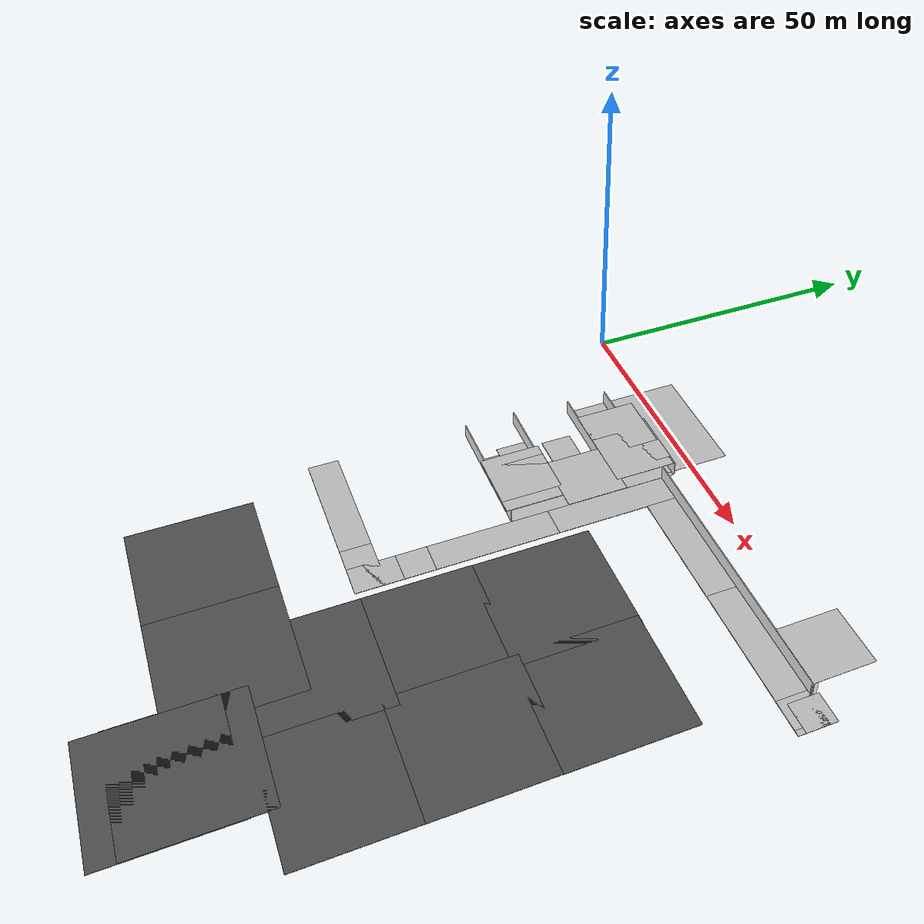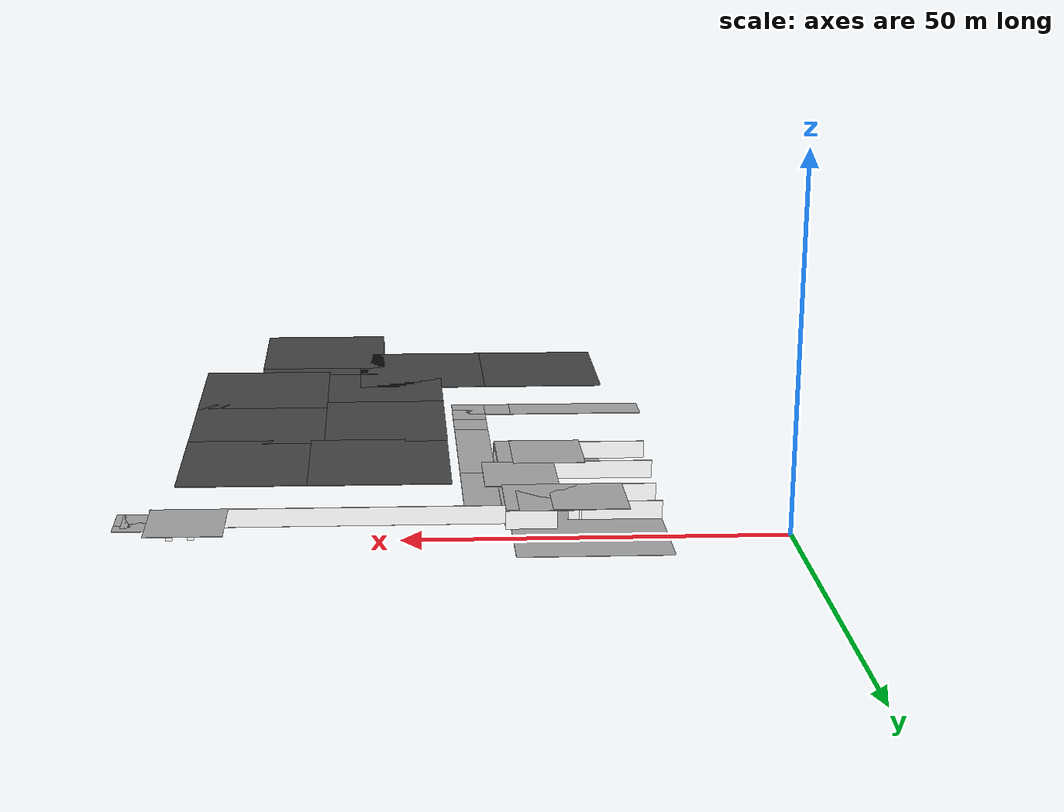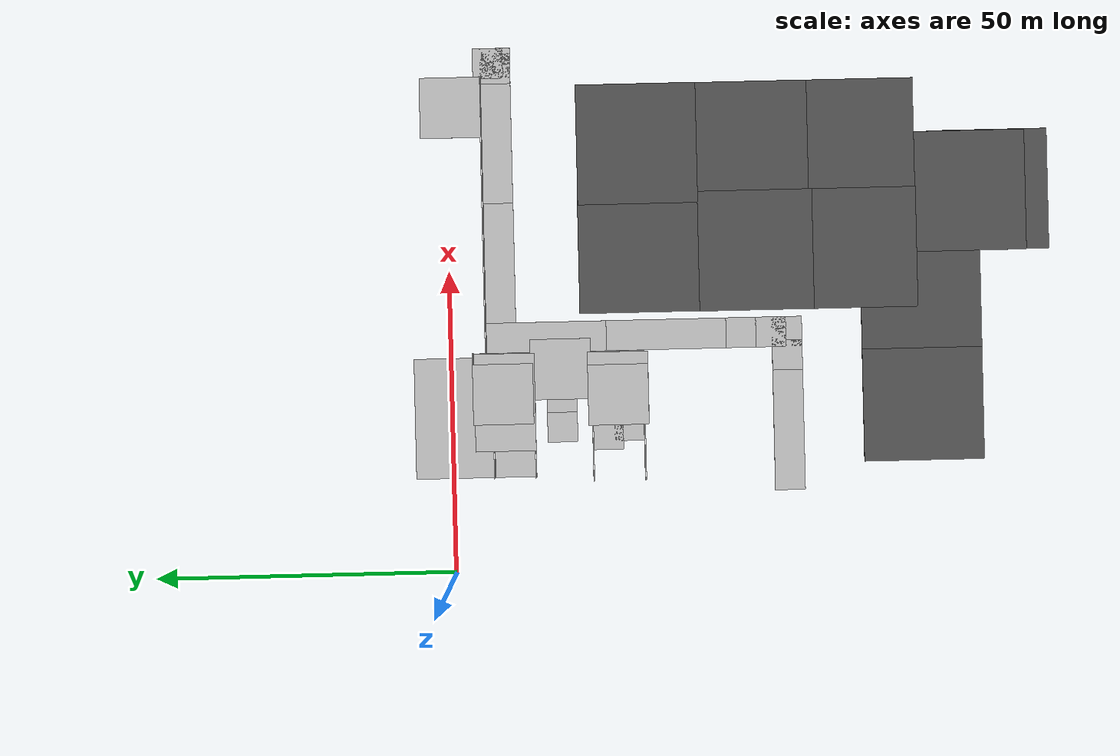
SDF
<sdf version="1.6">
 <world name="default">
  <model name="mainoffice">
   <pose>42.7555 15.4488 0 0 -0 0</pose>
   <link name="Wall_28">
    <collision name="Wall_28_Collision">
     <geometry><box><size>45.75 0.15 2.5</size></box></geometry>
     <pose>0 0 1.25 0 -0 0</pose>
    </collision>
    <visual name="Wall_28_Visual">
     <pose>0 0 1.25 0 -0 0</pose>
     <geometry><box><size>45.75 0.15 2.5</size></box></geometry>
     <material>
      <script>
       <uri>model://office_env/materials/scripts</uri>
       <uri>model://office_env/materials/textures</uri>
       <name>wall</name>
      </script>
      <ambient>1 1 1 1</ambient>
     </material>
    </visual>
    <pose>16.3009 -21.225 0 0 -0 3.14159</pose>
   </link>
   <link name="Wall_29">
    <collision name="Wall_29_Collision">
     <geometry><box><size>26.25 0.15 2.5</size></box></geometry>
     <pose>0 0 1.25 0 -0 0</pose>
    </collision>
    <visual name="Wall_29_Visual">
     <pose>0 0 1.25 0 -0 0</pose>
     <geometry><box><size>26.25 0.15 2.5</size></box></geometry>
     <material>
      <script>
       <uri>model://office_env/materials/scripts</uri>
       <uri>model://office_env/materials/textures</uri>
       <name>wall</name>
      </script>
      <ambient>1 1 1 1</ambient>
     </material>
    </visual>
    <pose>-6.49909 -34.275 0 0 0 -1.5708</pose>
   </link>
   <link name="Wall_30">
    <collision name="Wall_30_Collision">
     <geometry><box><size>21.5 0.15 2.5</size></box></geometry>
     <pose>0 0 1.25 0 -0 0</pose>
    </collision>
    <visual name="Wall_30_Visual">
     <pose>0 0 1.25 0 -0 0</pose>
     <geometry><box><size>21.5 0.15 2.5</size></box></geometry>
     <material>
      <script>
       <uri>model://office_env/materials/scripts</uri>
       <uri>model://office_env/materials/textures</uri>
       <name>wall</name>
      </script>
      <ambient>1 1 1 1</ambient>
     </material>
    </visual>
    <pose>-17.1741 -47.325 0 0 -0 3.14159</pose>
   </link>
   <link name="Wall_32">
    <collision name="Wall_32_Collision">
     <geometry><box><size>16.5 0.15 2.5</size></box></geometry>
     <pose>0 0 1.25 0 -0 0</pose>
    </collision>
    <visual name="Wall_32_Visual">
     <pose>0 0 1.25 0 -0 0</pose>
     <geometry><box><size>16.5 0.15 2.5</size></box></geometry>
     <material>
      <script>
       <uri>model://office_env/materials/scripts</uri>
       <uri>model://office_env/materials/textures</uri>
       <name>wall</name>
      </script>
      <ambient>1 1 1 1</ambient>
     </material>
    </visual>
    <pose>-19.6741 -38.725 0 0 -0 0</pose>
   </link>
   <link name="Wall_33">
    <pose>-11.4991 -33.925 0 0 -0 1.5708</pose>
    <visual name="Wall_33_Visual_0">
     <pose>-2.68364 0 1.25 0 -0 0</pose>
     <geometry><box><size>4.38272 0.15 2.5</size></box></geometry>
     <material>
      <script>
       <uri>model://office_env/materials/scripts</uri>
       <uri>model://office_env/materials/textures</uri>
       <name>wall</name>
      </script>
      <ambient>1 1 1 1</ambient>
     </material>
    </visual>
    <collision name="Wall_33_Collision_0">
     <geometry><box><size>4.38272 0.15 2.5</size></box></geometry>
     <pose>-2.68364 0 1.25 0 -0 0</pose>
    </collision>
    <visual name="Wall_33_Visual_1">
     <pose>2.94136 0 1.25 0 -0 0</pose>
     <geometry><box><size>3.86728 0.15 2.5</size></box></geometry>
     <material>
      <script>
       <uri>model://office_env/materials/scripts</uri>
       <uri>model://office_env/materials/textures</uri>
       <name>wall</name>
      </script>
      <ambient>1 1 1 1</ambient>
     </material>
    </visual>
    <collision name="Wall_33_Collision_1">
     <geometry><box><size>3.86728 0.15 2.5</size></box></geometry>
     <pose>2.94136 0 1.25 0 -0 0</pose>
    </collision>
    <visual name="Wall_33_Visual_2">
     <pose>0.257717 0 2.25 0 -0 0</pose>
     <geometry><box><size>1.5 0.15 0.5</size></box></geometry>
     <material>
      <script>
       <uri>model://office_env/materials/scripts</uri>
       <uri>model://office_env/materials/textures</uri>
       <name>wall</name>
      </script>
      <ambient>1 1 1 1</ambient>
     </material>
    </visual>
    <collision name="Wall_33_Collision_2">
     <geometry><box><size>1.5 0.15 0.5</size></box></geometry>
     <pose>0.257717 0 2.25 0 -0 0</pose>
    </collision>
   </link>
   <link name="Wall_34">
    <collision name="Wall_34_Collision">
     <geometry><box><size>15.75 0.15 2.5</size></box></geometry>
     <pose>0 0 1.25 0 -0 0</pose>
    </collision>
    <visual name="Wall_34_Visual">
     <pose>0 0 1.25 0 -0 0</pose>
     <geometry><box><size>15.75 0.15 2.5</size></box></geometry>
     <material>
      <script>
       <uri>model://office_env/materials/scripts</uri>
       <uri>model://office_env/materials/textures</uri>
       <name>wall</name>
      </script>
      <ambient>1 1 1 1</ambient>
     </material>
    </visual>
    <pose>-19.2991 -29.125 0 0 -0 3.14159</pose>
   </link>
   <link name="Wall_46">
    <collision name="Wall_46_Collision">
     <geometry><box><size>0.5 0.15 2.5</size></box></geometry>
     <pose>0 0 1.25 0 -0 0</pose>
    </collision>
    <visual name="Wall_46_Visual">
     <pose>0 0 1.25 0 -0 0</pose>
     <geometry><box><size>0.5 0.15 2.5</size></box></geometry>
     <material>
      <script>
       <uri>model://office_env/materials/scripts</uri>
       <uri>model://office_env/materials/textures</uri>
       <name>wall</name>
      </script>
      <ambient>1 1 1 1</ambient>
     </material>
    </visual>
    <pose>39.2759 -21.225 0 0 -0 0</pose>
   </link>
   <link name="Wall_48">
    <collision name="Wall_48_Collision">
     <geometry><box><size>1 0.15 2.5</size></box></geometry>
     <pose>0 0 1.25 0 -0 0</pose>
    </collision>
    <visual name="Wall_48_Visual">
     <pose>0 0 1.25 0 -0 0</pose>
     <geometry><box><size>1 0.15 2.5</size></box></geometry>
     <material>
      <script>
       <uri>model://office_env/materials/scripts</uri>
       <uri>model://office_env/materials/textures</uri>
       <name>wall</name>
      </script>
      <ambient>1 1 1 1</ambient>
     </material>
    </visual>
    <pose>39.3509 -20.95 0 0 0 -1.5708</pose>
   </link>
   <link name="Wall_53">
    <pose>-9.07409 -38.725 0 0 -0 0</pose>
    <visual name="Wall_53_Visual_0">
     <pose>-1.62716 0 1.25 0 -0 0</pose>
     <geometry><box><size>1.74568 0.15 2.5</size></box></geometry>
     <material>
      <script>
       <uri>model://office_env/materials/scripts</uri>
       <uri>model://office_env/materials/textures</uri>
       <name>wall</name>
      </script>
      <ambient>1 1 1 1</ambient>
     </material>
    </visual>
    <collision name="Wall_53_Collision_0">
     <geometry><box><size>1.74568 0.15 2.5</size></box></geometry>
     <pose>-1.62716 0 1.25 0 -0 0</pose>
    </collision>
    <visual name="Wall_53_Visual_1">
     <pose>1.62284 0 1.25 0 -0 0</pose>
     <geometry><box><size>1.75432 0.15 2.5</size></box></geometry>
     <material>
      <script>
       <uri>model://office_env/materials/scripts</uri>
       <uri>model://office_env/materials/textures</uri>
       <name>wall</name>
      </script>
      <ambient>1 1 1 1</ambient>
     </material>
    </visual>
    <collision name="Wall_53_Collision_1">
     <geometry><box><size>1.75432 0.15 2.5</size></box></geometry>
     <pose>1.62284 0 1.25 0 -0 0</pose>
    </collision>
    <visual name="Wall_53_Visual_2">
     <pose>-0.00432 0 2.25 0 -0 0</pose>
     <geometry><box><size>1.5 0.15 0.5</size></box></geometry>
     <material>
      <script>
       <uri>model://office_env/materials/scripts</uri>
       <uri>model://office_env/materials/textures</uri>
       <name>wall</name>
      </script>
      <ambient>1 1 1 1</ambient>
     </material>
    </visual>
    <collision name="Wall_53_Collision_2">
     <geometry><box><size>1.5 0.15 0.5</size></box></geometry>
     <pose>-0.00432 0 2.25 0 -0 0</pose>
    </collision>
   </link>
   <link name="Wall_56">
    <pose>-9.07409 -29.125 0 0 -0 0</pose>
    <visual name="Wall_56_Visual_0">
     <pose>-1.53426 0 1.25 0 -0 0</pose>
     <geometry><box><size>1.93148 0.15 2.5</size></box></geometry>
     <material>
      <script>
       <uri>model://office_env/materials/scripts</uri>
       <uri>model://office_env/materials/textures</uri>
       <name>wall</name>
      </script>
      <ambient>1 1 1 1</ambient>
     </material>
    </visual>
    <collision name="Wall_56_Collision_0">
     <geometry><box><size>1.93148 0.15 2.5</size></box></geometry>
     <pose>-1.53426 0 1.25 0 -0 0</pose>
    </collision>
    <visual name="Wall_56_Visual_1">
     <pose>1.71574 0 1.25 0 -0 0</pose>
     <geometry><box><size>1.56852 0.15 2.5</size></box></geometry>
     <material>
      <script>
       <uri>model://office_env/materials/scripts</uri>
       <uri>model://office_env/materials/textures</uri>
       <name>wall</name>
      </script>
      <ambient>1 1 1 1</ambient>
     </material>
    </visual>
    <collision name="Wall_56_Collision_1">
     <geometry><box><size>1.56852 0.15 2.5</size></box></geometry>
     <pose>1.71574 0 1.25 0 -0 0</pose>
    </collision>
    <visual name="Wall_56_Visual_2">
     <pose>0.181485 0 2.25 0 -0 0</pose>
     <geometry><box><size>1.5 0.15 0.5</size></box></geometry>
     <material>
      <script>
       <uri>model://office_env/materials/scripts</uri>
       <uri>model://office_env/materials/textures</uri>
       <name>wall</name>
      </script>
      <ambient>1 1 1 1</ambient>
     </material>
    </visual>
    <collision name="Wall_56_Collision_2">
     <geometry><box><size>1.5 0.15 0.5</size></box></geometry>
     <pose>0.181485 0 2.25 0 -0 0</pose>
    </collision>
   </link>
   <link name="Wall_59">
    <collision name="Wall_59_Collision">
     <geometry><box><size>7 0.15 2.5</size></box></geometry>
     <pose>0 0 1.25 0 -0 0</pose>
    </collision>
    <visual name="Wall_59_Visual">
     <pose>0 0 1.25 0 -0 0</pose>
     <geometry><box><size>7 0.15 2.5</size></box></geometry>
     <material>
      <script>
       <uri>model://office_env/materials/scripts</uri>
       <uri>model://office_env/materials/textures</uri>
       <name>wall</name>
      </script>
      <ambient>1 1 1 1</ambient>
     </material>
    </visual>
    <pose>-11.4991 -25.7 0 0 -0 1.5708</pose>
   </link>
   <link name="Wall_60">
    <pose>-13.7991 -22.275 0 0 -0 3.14159</pose>
    <visual name="Wall_60_Visual_0">
     <pose>-1.46064 0 1.25 0 -0 0</pose>
     <geometry><box><size>1.82871 0.15 2.5</size></box></geometry>
     <material>
      <script>
       <uri>model://office_env/materials/scripts</uri>
       <uri>model://office_env/materials/textures</uri>
       <name>wall</name>
      </script>
      <ambient>1 1 1 1</ambient>
     </material>
    </visual>
    <collision name="Wall_60_Collision_0">
     <geometry><box><size>1.82871 0.15 2.5</size></box></geometry>
     <pose>-1.46064 0 1.25 0 -0 0</pose>
    </collision>
    <visual name="Wall_60_Visual_1">
     <pose>1.66436 0 1.25 0 -0 0</pose>
     <geometry><box><size>1.42129 0.15 2.5</size></box></geometry>
     <material>
      <script>
       <uri>model://office_env/materials/scripts</uri>
       <uri>model://office_env/materials/textures</uri>
       <name>wall</name>
      </script>
      <ambient>1 1 1 1</ambient>
     </material>
    </visual>
    <collision name="Wall_60_Collision_1">
     <geometry><box><size>1.42129 0.15 2.5</size></box></geometry>
     <pose>1.66436 0 1.25 0 -0 0</pose>
    </collision>
    <visual name="Wall_60_Visual_2">
     <pose>0.203711 0 2.25 0 -0 0</pose>
     <geometry><box><size>1.5 0.15 0.5</size></box></geometry>
     <material>
      <script>
       <uri>model://office_env/materials/scripts</uri>
       <uri>model://office_env/materials/textures</uri>
       <name>wall</name>
      </script>
      <ambient>1 1 1 1</ambient>
     </material>
    </visual>
    <collision name="Wall_60_Collision_2">
     <geometry><box><size>1.5 0.15 0.5</size></box></geometry>
     <pose>0.203711 0 2.25 0 -0 0</pose>
    </collision>
   </link>
   <link name="Wall_61">
    <collision name="Wall_61_Collision">
     <geometry><box><size>0.5 0.15 2.5</size></box></geometry>
     <pose>0 0 1.25 0 -0 0</pose>
    </collision>
    <visual name="Wall_61_Visual">
     <pose>0 0 1.25 0 -0 0</pose>
     <geometry><box><size>0.5 0.15 2.5</size></box></geometry>
     <material>
      <script>
       <uri>model://office_env/materials/scripts</uri>
       <uri>model://office_env/materials/textures</uri>
       <name>wall</name>
      </script>
      <ambient>1 1 1 1</ambient>
     </material>
    </visual>
    <pose>-16.2741 -22.275 0 0 -0 3.14159</pose>
   </link>
   <link name="Wall_65">
    <collision name="Wall_65_Collision">
     <geometry><box><size>10.75 0.15 2.5</size></box></geometry>
     <pose>0 0 1.25 0 -0 0</pose>
    </collision>
    <visual name="Wall_65_Visual">
     <pose>0 0 1.25 0 -0 0</pose>
     <geometry><box><size>10.75 0.15 2.5</size></box></geometry>
     <material>
      <script>
       <uri>model://office_env/materials/scripts</uri>
       <uri>model://office_env/materials/textures</uri>
       <name>wall</name>
      </script>
      <ambient>1 1 1 1</ambient>
     </material>
    </visual>
    <pose>-21.7491 -22.275 0 0 -0 3.14159</pose>
   </link>
   <link name="Wall_81">
    <collision name="Wall_81_Collision">
     <geometry><box><size>6.75 0.15 2.5</size></box></geometry>
     <pose>0 0 1.25 0 -0 0</pose>
    </collision>
    <visual name="Wall_81_Visual">
     <pose>0 0 1.25 0 -0 0</pose>
     <geometry><box><size>6.75 0.15 2.5</size></box></geometry>
     <material>
      <script>
       <uri>model://office_env/materials/scripts</uri>
       <uri>model://office_env/materials/textures</uri>
       <name>wall</name>
      </script>
      <ambient>1 1 1 1</ambient>
     </material>
    </visual>
    <pose>-9.72161 -19.0475 0 0 -0 3.14159</pose>
   </link>
   <static>1</static>
  </model>
  <model name="asphalt_plane">
   <static>1</static>
   <link name="link">
    <collision name="collision"><geometry><box><size>20 20 0.1</size></box></geometry></collision>
    <visual name="visual">
     <cast_shadows>0</cast_shadows>
     <geometry><box><size>20 20 0.1</size></box></geometry>
     <material>
      <script>
       <uri>model://asphalt_plane/materials/scripts</uri>
       <uri>model://asphalt_plane/materials/textures</uri>
       <name>vrc/asphalt</name>
      </script>
     </material>
    </visual>
   </link>
   <pose>70.7475 -31.5972 0 0 -0 0</pose>
  </model>
  <model name="asphalt_plane_14">
   <static>1</static>
   <link name="link">
    <collision name="collision"><geometry><box><size>20 20 0.1</size></box></geometry></collision>
    <visual name="visual">
     <cast_shadows>0</cast_shadows>
     <geometry><box><size>20 20 0.1</size></box></geometry>
     <material>
      <script>
       <uri>model://asphalt_plane/materials/scripts</uri>
       <uri>model://asphalt_plane/materials/textures</uri>
       <name>vrc/asphalt</name>
      </script>
     </material>
    </visual>
   </link>
   <pose>52.6349 -31.5293 0 0 -0 0</pose>
  </model>
  <model name="asphalt_plane_15">
   <static>1</static>
   <link name="link">
    <collision name="collision"><geometry><box><size>20 20 0.1</size></box></geometry></collision>
    <visual name="visual">
     <cast_shadows>0</cast_shadows>
     <geometry><box><size>20 20 0.1</size></box></geometry>
     <material>
      <script>
       <uri>model://asphalt_plane/materials/scripts</uri>
       <uri>model://asphalt_plane/materials/textures</uri>
       <name>vrc/asphalt</name>
      </script>
     </material>
    </visual>
   </link>
   <pose>52.5808 -50.6415 0 0 -0 0</pose>
  </model>
  <model name="asphalt_plane_16">
   <static>1</static>
   <link name="link">
    <collision name="collision"><geometry><box><size>20 20 0.1</size></box></geometry></collision>
    <visual name="visual">
     <cast_shadows>0</cast_shadows>
     <geometry><box><size>20 20 0.1</size></box></geometry>
     <material>
      <script>
       <uri>model://asphalt_plane/materials/scripts</uri>
       <uri>model://asphalt_plane/materials/textures</uri>
       <name>vrc/asphalt</name>
      </script>
     </material>
    </visual>
   </link>
   <pose>70.7064 -50.1212 0 0 -0 0</pose>
  </model>
  <model name="asphalt_plane_17">
   <static>1</static>
   <link name="link">
    <collision name="collision"><geometry><box><size>20 20 0.1</size></box></geometry></collision>
    <visual name="visual">
     <cast_shadows>0</cast_shadows>
     <geometry><box><size>20 20 0.1</size></box></geometry>
     <material>
      <script>
       <uri>model://asphalt_plane/materials/scripts</uri>
       <uri>model://asphalt_plane/materials/textures</uri>
       <name>vrc/asphalt</name>
      </script>
     </material>
    </visual>
   </link>
   <pose>52.5696 -67.9238 0 0 -0 0</pose>
  </model>
  <model name="asphalt_plane_18">
   <static>1</static>
   <link name="link">
    <collision name="collision"><geometry><box><size>20 20 0.1</size></box></geometry></collision>
    <visual name="visual">
     <cast_shadows>0</cast_shadows>
     <geometry><box><size>20 20 0.1</size></box></geometry>
     <material>
      <script>
       <uri>model://asphalt_plane/materials/scripts</uri>
       <uri>model://asphalt_plane/materials/textures</uri>
       <name>vrc/asphalt</name>
      </script>
     </material>
    </visual>
   </link>
   <pose>70.6965 -67.8375 0 0 -0 0</pose>
  </model>
  <model name="Box_36x15W">
   <link name="Wall">
    <pose>0 0 0.1985 0 -0 0</pose>
    <inertial>
     <mass>5</mass>
     <inertia><ixx>0.1022</ixx><iyy>0.4107</iyy><izz>0.3815</izz><ixy>0</ixy><ixz>0</ixz><iyz>0</iyz></inertia>
    </inertial>
    <collision name="Wall_Collision"><geometry><box><size>0.91 0.296 0.397</size></box></geometry></collision>
    <visual name="Wall_Visual">
     <geometry><box><size>0.91 0.296 0.397</size></box></geometry>
     <material>
      <script>
       <uri>model://office_env/materials/scripts</uri>
       <uri>model://office_env/materials/textures</uri>
       <name>wall</name>
      </script>
      <ambient>1 1 1 1</ambient>
     </material>
    </visual>
   </link>
   <static>1</static>
   <pose>76.5783 -4.8925 0 0 -0 0</pose>
  </model>
  <model name="Box_36x15W_0">
   <link name="Wall">
    <pose>0 0 0.1985 0 -0 0</pose>
    <inertial>
     <mass>5</mass>
     <inertia><ixx>0.1022</ixx><iyy>0.4107</iyy><izz>0.3815</izz><ixy>0</ixy><ixz>0</ixz><iyz>0</iyz></inertia>
    </inertial>
    <collision name="Wall_Collision"><geometry><box><size>0.91 0.296 0.397</size></box></geometry></collision>
    <visual name="Wall_Visual">
     <geometry><box><size>0.91 0.296 0.397</size></box></geometry>
     <material>
      <script>
       <uri>model://office_env/materials/scripts</uri>
       <uri>model://office_env/materials/textures</uri>
       <name>wall</name>
      </script>
      <ambient>1 1 1 1</ambient>
     </material>
    </visual>
   </link>
   <static>1</static>
   <pose>79.3292 -4.88719 0 0 -0 0</pose>
  </model>
  <model name="Box_36x15W_1">
   <link name="Wall">
    <pose>0 0 0.1985 0 -0 0</pose>
    <inertial>
     <mass>5</mass>
     <inertia><ixx>0.1022</ixx><iyy>0.4107</iyy><izz>0.3815</izz><ixy>0</ixy><ixz>0</ixz><iyz>0</iyz></inertia>
    </inertial>
    <collision name="Wall_Collision"><geometry><box><size>0.91 0.296 0.397</size></box></geometry></collision>
    <visual name="Wall_Visual">
     <geometry><box><size>0.91 0.296 0.397</size></box></geometry>
     <material>
      <script>
       <uri>model://office_env/materials/scripts</uri>
       <uri>model://office_env/materials/textures</uri>
       <name>wall</name>
      </script>
      <ambient>1 1 1 1</ambient>
     </material>
    </visual>
   </link>
   <static>1</static>
   <pose>76.6481 -3.15959 0 0 -0 0</pose>
  </model>
  <model name="Box_36x15W_clone">
   <link name="Wall">
    <pose>0 0 0.1985 0 -0 0</pose>
    <inertial>
     <mass>5</mass>
     <inertia><ixx>0.1022</ixx><iyy>0.4107</iyy><izz>0.3815</izz><ixy>0</ixy><ixz>0</ixz><iyz>0</iyz></inertia>
    </inertial>
    <collision name="Wall_Collision"><geometry><box><size>0.91 0.296 0.397</size></box></geometry></collision>
    <visual name="Wall_Visual">
     <geometry><box><size>0.91 0.296 0.397</size></box></geometry>
     <material>
      <script>
       <uri>model://office_env/materials/scripts</uri>
       <uri>model://office_env/materials/textures</uri>
       <name>wall</name>
      </script>
      <ambient>1 1 1 1</ambient>
     </material>
    </visual>
   </link>
   <static>1</static>
   <pose>79.4111 -3.09991 0 0 -0 0</pose>
  </model>
  <model name="Box_36x15W_clone_0">
   <link name="Wall">
    <pose>0 0 0.1985 0 -0 0</pose>
    <inertial>
     <mass>5</mass>
     <inertia><ixx>0.1022</ixx><iyy>0.4107</iyy><izz>0.3815</izz><ixy>0</ixy><ixz>0</ixz><iyz>0</iyz></inertia>
    </inertial>
    <collision name="Wall_Collision"><geometry><box><size>0.91 0.296 0.397</size></box></geometry></collision>
    <visual name="Wall_Visual">
     <geometry><box><size>0.91 0.296 0.397</size></box></geometry>
     <material>
      <script>
       <uri>model://office_env/materials/scripts</uri>
       <uri>model://office_env/materials/textures</uri>
       <name>wall</name>
      </script>
      <ambient>1 1 1 1</ambient>
     </material>
    </visual>
   </link>
   <static>1</static>
   <pose>76.6853 -1.41646 0 0 -0 0</pose>
  </model>
  <model name="Box_36x15W_clone_1">
   <link name="Wall">
    <pose>0 0 0.1985 0 -0 0</pose>
    <inertial>
     <mass>5</mass>
     <inertia><ixx>0.1022</ixx><iyy>0.4107</iyy><izz>0.3815</izz><ixy>0</ixy><ixz>0</ixz><iyz>0</iyz></inertia>
    </inertial>
    <collision name="Wall_Collision"><geometry><box><size>0.91 0.296 0.397</size></box></geometry></collision>
    <visual name="Wall_Visual">
     <geometry><box><size>0.91 0.296 0.397</size></box></geometry>
     <material>
      <script>
       <uri>model://office_env/materials/scripts</uri>
       <uri>model://office_env/materials/textures</uri>
       <name>wall</name>
      </script>
      <ambient>1 1 1 1</ambient>
     </material>
    </visual>
   </link>
   <static>1</static>
   <pose>79.4333 -1.32899 0 0 -0 0</pose>
  </model>
  <model name="asphalt_plane_19">
   <static>1</static>
   <link name="link">
    <collision name="collision"><geometry><box><size>20 20 0.1</size></box></geometry></collision>
    <visual name="visual">
     <cast_shadows>0</cast_shadows>
     <geometry><box><size>20 20 0.1</size></box></geometry>
     <material>
      <script>
       <uri>model://asphalt_plane/materials/scripts</uri>
       <uri>model://asphalt_plane/materials/textures</uri>
       <name>vrc/asphalt</name>
      </script>
     </material>
    </visual>
   </link>
   <pose>61.6742 -86.2327 0 0 -0 0</pose>
  </model>
  <model name="asphalt_plane_20">
   <static>1</static>
   <link name="link">
    <collision name="collision"><geometry><box><size>20 20 0.1</size></box></geometry></collision>
    <visual name="visual">
     <cast_shadows>0</cast_shadows>
     <geometry><box><size>20 20 0.1</size></box></geometry>
     <material>
      <script>
       <uri>model://asphalt_plane/materials/scripts</uri>
       <uri>model://asphalt_plane/materials/textures</uri>
       <name>vrc/asphalt</name>
      </script>
     </material>
    </visual>
   </link>
   <pose>61.7481 -89.9696 0 0 -0 0</pose>
  </model>
  <model name="asphalt_plane_25">
   <static>1</static>
   <link name="link">
    <collision name="collision"><geometry><box><size>20 20 0.1</size></box></geometry></collision>
    <visual name="visual">
     <cast_shadows>0</cast_shadows>
     <geometry><box><size>20 20 0.1</size></box></geometry>
     <material>
      <script>
       <uri>model://asphalt_plane/materials/scripts</uri>
       <uri>model://asphalt_plane/materials/textures</uri>
       <name>vrc/asphalt</name>
      </script>
     </material>
    </visual>
   </link>
   <pose>45.6367 -78.4315 0 0 -0 0</pose>
  </model>
  <model name="asphalt_plane_27">
   <static>1</static>
   <link name="link">
    <collision name="collision"><geometry><box><size>20 20 0.1</size></box></geometry></collision>
    <visual name="visual">
     <cast_shadows>0</cast_shadows>
     <geometry><box><size>20 20 0.1</size></box></geometry>
     <material>
      <script>
       <uri>model://asphalt_plane/materials/scripts</uri>
       <uri>model://asphalt_plane/materials/textures</uri>
       <name>vrc/asphalt</name>
      </script>
     </material>
    </visual>
   </link>
   <pose>26.9397 -78.4242 0 0 -0 0</pose>
  </model>
  <model name="Floor_36">
   <link name="main">
    <pose>0 0 0.01 0 -0 0</pose>
    <collision name="main_Collision"><geometry><box><size>5 5 0.05</size></box></geometry></collision>
    <visual name="main_Visual">
     <geometry><box><size>5 5 0.05</size></box></geometry>
     <material>
      <script>
       <uri>model://Floor_verysmall/materials/scripts</uri>
       <uri>model://Floor_verysmall/materials/textures</uri>
       <name>floor</name>
      </script>
     </material>
    </visual>
   </link>
   <static>1</static>
   <pose>33.79 -20.7523 0 0 -0 0</pose>
  </model>
  <model name="Floor_37">
   <link name="main">
    <pose>0 0 0.01 0 -0 0</pose>
    <collision name="main_Collision"><geometry><box><size>5 5 0.05</size></box></geometry></collision>
    <visual name="main_Visual">
     <geometry><box><size>5 5 0.05</size></box></geometry>
     <material>
      <script>
       <uri>model://Floor_verysmall/materials/scripts</uri>
       <uri>model://Floor_verysmall/materials/textures</uri>
       <name>floor</name>
      </script>
     </material>
    </visual>
   </link>
   <static>1</static>
   <pose>33.7875 -15.7631 0 0 -0 0</pose>
  </model>
  <model name="Floor_38">
   <link name="main">
    <pose>0 0 0.01 0 -0 0</pose>
    <collision name="main_Collision"><geometry><box><size>20 20 0.05</size></box></geometry></collision>
    <visual name="main_Visual">
     <geometry><box><size>20 20 0.05</size></box></geometry>
     <material>
      <script>
       <uri>model://Floor_medium/materials/scripts</uri>
       <uri>model://Floor_medium/materials/textures</uri>
       <name>floor</name>
      </script>
     </material>
    </visual>
   </link>
   <static>1</static>
   <pose>25.6683 -3.68274 0 0 -0 0</pose>
  </model>
  <model name="Floor_39">
   <link name="main">
    <pose>0 0 0.01 0 -0 0</pose>
    <collision name="main_Collision"><geometry><box><size>10 10 0.05</size></box></geometry></collision>
    <visual name="main_Visual">
     <geometry><box><size>10 10 0.05</size></box></geometry>
     <material>
      <script>
       <uri>model://Floor_small/materials/scripts</uri>
       <uri>model://Floor_small/materials/textures</uri>
       <name>floor</name>
      </script>
     </material>
    </visual>
   </link>
   <static>1</static>
   <pose>31.3575 -8.76884 0 0 -0 0</pose>
  </model>
  <model name="Floor_41">
   <link name="main">
    <pose>0 0 0.01 0 -0 0</pose>
    <collision name="main_Collision"><geometry><box><size>5 5 0.05</size></box></geometry></collision>
    <visual name="main_Visual">
     <geometry><box><size>5 5 0.05</size></box></geometry>
     <material>
      <script>
       <uri>model://Floor_verysmall/materials/scripts</uri>
       <uri>model://Floor_verysmall/materials/textures</uri>
       <name>floor</name>
      </script>
     </material>
    </visual>
   </link>
   <static>1</static>
   <pose>22.414 -25.8333 0 0 -0 0</pose>
  </model>
  <model name="Floor_42">
   <link name="main">
    <pose>0 0 0.01 0 -0 0</pose>
    <collision name="main_Collision"><geometry><box><size>5 5 0.05</size></box></geometry></collision>
    <visual name="main_Visual">
     <geometry><box><size>5 5 0.05</size></box></geometry>
     <material>
      <script>
       <uri>model://Floor_verysmall/materials/scripts</uri>
       <uri>model://Floor_verysmall/materials/textures</uri>
       <name>floor</name>
      </script>
     </material>
    </visual>
   </link>
   <static>1</static>
   <pose>27.3802 -25.8391 0 0 -0 0</pose>
  </model>
  <model name="Floor_43">
   <link name="main">
    <pose>0 0 0.01 0 -0 0</pose>
    <collision name="main_Collision"><geometry><box><size>5 5 0.05</size></box></geometry></collision>
    <visual name="main_Visual">
     <geometry><box><size>5 5 0.05</size></box></geometry>
     <material>
      <script>
       <uri>model://Floor_verysmall/materials/scripts</uri>
       <uri>model://Floor_verysmall/materials/textures</uri>
       <name>floor</name>
      </script>
     </material>
    </visual>
   </link>
   <static>1</static>
   <pose>33.7535 -25.695 0 0 -0 0</pose>
  </model>
  <model name="Floor_44">
   <link name="main">
    <pose>0 0 0.01 0 -0 0</pose>
    <collision name="main_Collision"><geometry><box><size>5 5 0.05</size></box></geometry></collision>
    <visual name="main_Visual">
     <geometry><box><size>5 5 0.05</size></box></geometry>
     <material>
      <script>
       <uri>model://Floor_verysmall/materials/scripts</uri>
       <uri>model://Floor_verysmall/materials/textures</uri>
       <name>floor</name>
      </script>
     </material>
    </visual>
   </link>
   <static>1</static>
   <pose>30.6656 -25.8356 0 0 -0 0</pose>
  </model>
  <model name="Floor_45">
   <link name="main">
    <pose>0 0 0.01 0 -0 0</pose>
    <collision name="main_Collision"><geometry><box><size>5 5 0.05</size></box></geometry></collision>
    <visual name="main_Visual">
     <geometry><box><size>5 5 0.05</size></box></geometry>
     <material>
      <script>
       <uri>model://Floor_verysmall/materials/scripts</uri>
       <uri>model://Floor_verysmall/materials/textures</uri>
       <name>floor</name>
      </script>
     </material>
    </visual>
   </link>
   <static>1</static>
   <pose>33.7308 -29.3403 0 0 -0 0</pose>
  </model>
  <model name="Floor_46">
   <link name="main">
    <pose>0 0 0.01 0 -0 0</pose>
    <collision name="main_Collision"><geometry><box><size>5 5 0.05</size></box></geometry></collision>
    <visual name="main_Visual">
     <geometry><box><size>5 5 0.05</size></box></geometry>
     <material>
      <script>
       <uri>model://Floor_verysmall/materials/scripts</uri>
       <uri>model://Floor_verysmall/materials/textures</uri>
       <name>floor</name>
      </script>
     </material>
    </visual>
   </link>
   <static>1</static>
   <pose>28.7442 -29.3242 0 0 -0 0</pose>
  </model>
  <model name="Floor_47">
   <link name="main">
    <pose>0 0 0.01 0 -0 0</pose>
    <collision name="main_Collision"><geometry><box><size>5 5 0.05</size></box></geometry></collision>
    <visual name="main_Visual">
     <geometry><box><size>5 5 0.05</size></box></geometry>
     <material>
      <script>
       <uri>model://Floor_verysmall/materials/scripts</uri>
       <uri>model://Floor_verysmall/materials/textures</uri>
       <name>floor</name>
      </script>
     </material>
    </visual>
   </link>
   <static>1</static>
   <pose>23.8279 -29.3586 0 0 -0 0</pose>
  </model>
  <model name="outdoor_plane_clone_clone_clone_clone">
   <static>1</static>
   <link name="link">
    <collision name="collision"><geometry><box><size>5 20 0.1</size></box></geometry></collision>
    <visual name="visual">
     <cast_shadows>0</cast_shadows>
     <geometry><box><size>5 20 0.1</size></box></geometry>
     <material>
      <script>
       <uri>model://outdoor_plane/materials/scripts</uri>
       <uri>model://outdoor_plane/materials/textures</uri>
       <name>outds/Image</name>
      </script>
     </material>
    </visual>
   </link>
   <pose>22.5169 -55.9462 0 0 -0 1.57079</pose>
  </model>
  <model name="outdoor_plane_8">
   <static>1</static>
   <link name="link">
    <collision name="collision"><geometry><box><size>5 20 0.1</size></box></geometry></collision>
    <visual name="visual">
     <cast_shadows>0</cast_shadows>
     <geometry><box><size>5 20 0.1</size></box></geometry>
     <material>
      <script>
       <uri>model://outdoor_plane/materials/scripts</uri>
       <uri>model://outdoor_plane/materials/textures</uri>
       <name>outds/Image</name>
      </script>
     </material>
    </visual>
   </link>
   <pose>38.8777 -15.8318 0 0 -0 0</pose>
  </model>
  <model name="outdoor_plane_9">
   <static>1</static>
   <link name="link">
    <collision name="collision"><geometry><box><size>5 20 0.1</size></box></geometry></collision>
    <visual name="visual">
     <cast_shadows>0</cast_shadows>
     <geometry><box><size>5 20 0.1</size></box></geometry>
     <material>
      <script>
       <uri>model://outdoor_plane/materials/scripts</uri>
       <uri>model://outdoor_plane/materials/textures</uri>
       <name>outds/Image</name>
      </script>
     </material>
    </visual>
   </link>
   <pose>38.8798 -35.8023 0 0 -0 0</pose>
  </model>
  <model name="outdoor_plane_10">
   <static>1</static>
   <link name="link">
    <collision name="collision"><geometry><box><size>5 5 0.1</size></box></geometry></collision>
    <visual name="visual">
     <cast_shadows>0</cast_shadows>
     <geometry><box><size>5 5 0.1</size></box></geometry>
     <material>
      <script>
       <uri>model://outdoor_planesmall/materials/scripts</uri>
       <uri>model://outdoor_planesmall/materials/textures</uri>
       <name>outdss/Image</name>
      </script>
     </material>
    </visual>
   </link>
   <pose>38.8907 -48.2873 0 0 -0 0</pose>
  </model>
  <model name="outdoor_plane_11">
   <static>1</static>
   <link name="link">
    <collision name="collision"><geometry><box><size>5 5 0.1</size></box></geometry></collision>
    <visual name="visual">
     <cast_shadows>0</cast_shadows>
     <geometry><box><size>5 5 0.1</size></box></geometry>
     <material>
      <script>
       <uri>model://outdoor_planesmall/materials/scripts</uri>
       <uri>model://outdoor_planesmall/materials/textures</uri>
       <name>outdss/Image</name>
      </script>
     </material>
    </visual>
   </link>
   <pose>38.8857 -53.2696 0 0 -0 0</pose>
  </model>
  <model name="outdoor_plane_12">
   <static>1</static>
   <link name="link">
    <collision name="collision"><geometry><box><size>5 5 0.1</size></box></geometry></collision>
    <visual name="visual">
     <cast_shadows>0</cast_shadows>
     <geometry><box><size>5 5 0.1</size></box></geometry>
     <material>
      <script>
       <uri>model://outdoor_planesmall/materials/scripts</uri>
       <uri>model://outdoor_planesmall/materials/textures</uri>
       <name>outdss/Image</name>
      </script>
     </material>
    </visual>
   </link>
   <pose>34.9956 -55.9437 0 0 -0 0</pose>
  </model>
  <model name="outdoor_plane_13">
   <static>1</static>
   <link name="link">
    <collision name="collision"><geometry><box><size>5 5 0.1</size></box></geometry></collision>
    <visual name="visual">
     <cast_shadows>0</cast_shadows>
     <geometry><box><size>5 5 0.1</size></box></geometry>
     <material>
      <script>
       <uri>model://outdoor_planesmall/materials/scripts</uri>
       <uri>model://outdoor_planesmall/materials/textures</uri>
       <name>outdss/Image</name>
      </script>
     </material>
    </visual>
   </link>
   <pose>38.8783 -55.9475 0 0 -0 0</pose>
  </model>
  <model name="outdoor_plane_clone_clone_clone_clone_clone">
   <static>1</static>
   <link name="link">
    <collision name="collision"><geometry><box><size>5 20 0.1</size></box></geometry></collision>
    <visual name="visual">
     <cast_shadows>0</cast_shadows>
     <geometry><box><size>5 20 0.1</size></box></geometry>
     <material>
      <script>
       <uri>model://outdoor_plane/materials/scripts</uri>
       <uri>model://outdoor_plane/materials/textures</uri>
       <name>outds/Image</name>
      </script>
     </material>
    </visual>
   </link>
   <pose>51.323 -8.31588 0 0 -0 1.57079</pose>
  </model>
  <model name="outdoor_plane_clone_clone_clone_clone_clone_0">
   <static>1</static>
   <link name="link">
    <collision name="collision"><geometry><box><size>5 20 0.1</size></box></geometry></collision>
    <visual name="visual">
     <cast_shadows>0</cast_shadows>
     <geometry><box><size>5 20 0.1</size></box></geometry>
     <material>
      <script>
       <uri>model://outdoor_plane/materials/scripts</uri>
       <uri>model://outdoor_plane/materials/textures</uri>
       <name>outds/Image</name>
      </script>
     </material>
    </visual>
   </link>
   <pose>71.2527 -8.29295 0 0 -0 1.57079</pose>
  </model>
  <model name="outdoor_plane_15">
   <static>1</static>
   <link name="link">
    <collision name="collision"><geometry><box><size>5 5 0.1</size></box></geometry></collision>
    <visual name="visual">
     <cast_shadows>0</cast_shadows>
     <geometry><box><size>5 5 0.1</size></box></geometry>
     <material>
      <script>
       <uri>model://outdoor_planesmall/materials/scripts</uri>
       <uri>model://outdoor_planesmall/materials/textures</uri>
       <name>outdss/Image</name>
      </script>
     </material>
    </visual>
   </link>
   <pose>84.6813 -7.08458 0 0 -0 0</pose>
  </model>
  <model name="outdoor_plane_16">
   <static>1</static>
   <link name="link">
    <collision name="collision"><geometry><box><size>5 5 0.1</size></box></geometry></collision>
    <visual name="visual">
     <cast_shadows>0</cast_shadows>
     <geometry><box><size>5 5 0.1</size></box></geometry>
     <material>
      <script>
       <uri>model://outdoor_planesmall/materials/scripts</uri>
       <uri>model://outdoor_planesmall/materials/textures</uri>
       <name>outdss/Image</name>
      </script>
     </material>
    </visual>
   </link>
   <pose>83.7447 -8.30883 0 0 -0 0</pose>
  </model>
  <model name="outdoor_plane_17">
   <static>1</static>
   <link name="link">
    <collision name="collision"><geometry><box><size>5 5 0.1</size></box></geometry></collision>
    <visual name="visual">
     <cast_shadows>0</cast_shadows>
     <geometry><box><size>5 5 0.1</size></box></geometry>
     <material>
      <script>
       <uri>model://outdoor_planesmall/materials/scripts</uri>
       <uri>model://outdoor_planesmall/materials/textures</uri>
       <name>outdss/Image</name>
      </script>
     </material>
    </visual>
   </link>
   <pose>84.6743 -8.31438 0 0 -0 0</pose>
  </model>
  <model name="outdoor_plane_25">
   <static>1</static>
   <link name="link">
    <collision name="collision"><geometry><box><size>5 5 0.1</size></box></geometry></collision>
    <visual name="visual">
     <cast_shadows>0</cast_shadows>
     <geometry><box><size>5 5 0.1</size></box></geometry>
     <material>
      <script>
       <uri>model://outdoor_planesmall/materials/scripts</uri>
       <uri>model://outdoor_planesmall/materials/textures</uri>
       <name>outdss/Image</name>
      </script>
     </material>
    </visual>
   </link>
   <pose>28.798 -18.2335 0 0 -0 0</pose>
  </model>
  <model name="outdoor_plane_26">
   <static>1</static>
   <link name="link">
    <collision name="collision"><geometry><box><size>5 5 0.1</size></box></geometry></collision>
    <visual name="visual">
     <cast_shadows>0</cast_shadows>
     <geometry><box><size>5 5 0.1</size></box></geometry>
     <material>
      <script>
       <uri>model://outdoor_planesmall/materials/scripts</uri>
       <uri>model://outdoor_planesmall/materials/textures</uri>
       <name>outdss/Image</name>
      </script>
     </material>
    </visual>
   </link>
   <pose>23.8351 -18.2234 0 0 -0 0</pose>
  </model>
  <model name="Floor_3_clone_10_clone_5">
   <link name="main">
    <pose>0 0 0.01 0 -0 0</pose>
    <collision name="main_Collision"><geometry><box><size>10 10 0.05</size></box></geometry></collision>
    <visual name="main_Visual">
     <geometry><box><size>10 10 0.05</size></box></geometry>
     <material>
      <script>
       <uri>model://Floor_small/materials/scripts</uri>
       <uri>model://Floor_small/materials/textures</uri>
       <name>floor</name>
      </script>
     </material>
    </visual>
   </link>
   <static>1</static>
   <pose>77.1609 -0.802155 2.5 0 -0 0</pose>
  </model>
  <model name="Floor_3_clone_10_clone_8">
   <link name="main">
    <pose>0 0 0.01 0 -0 0</pose>
    <collision name="main_Collision"><geometry><box><size>10 10 0.05</size></box></geometry></collision>
    <visual name="main_Visual">
     <geometry><box><size>10 10 0.05</size></box></geometry>
     <material>
      <script>
       <uri>model://Floor_small/materials/scripts</uri>
       <uri>model://Floor_small/materials/textures</uri>
       <name>floor</name>
      </script>
     </material>
    </visual>
   </link>
   <static>1</static>
   <pose>29.5975 -8.51645 2.5 0 -0 0</pose>
  </model>
  <model name="Floor_3_clone_16">
   <link name="main">
    <pose>0 0 0.01 0 -0 0</pose>
    <collision name="main_Collision"><geometry><box><size>10 10 0.05</size></box></geometry></collision>
    <visual name="main_Visual">
     <geometry><box><size>10 10 0.05</size></box></geometry>
     <material>
      <script>
       <uri>model://Floor_small/materials/scripts</uri>
       <uri>model://Floor_small/materials/textures</uri>
       <name>floor</name>
      </script>
     </material>
    </visual>
   </link>
   <static>1</static>
   <pose>31.3111 -8.77748 2.5 0 -0 0</pose>
  </model>
  <model name="Floor_3_clone_17">
   <link name="main">
    <pose>0 0 0.01 0 -0 0</pose>
    <collision name="main_Collision"><geometry><box><size>10 10 0.05</size></box></geometry></collision>
    <visual name="main_Visual">
     <geometry><box><size>10 10 0.05</size></box></geometry>
     <material>
      <script>
       <uri>model://Floor_small/materials/scripts</uri>
       <uri>model://Floor_small/materials/textures</uri>
       <name>floor</name>
      </script>
     </material>
    </visual>
   </link>
   <static>1</static>
   <pose>25.182 -8.79488 2.5 0 -0 0</pose>
  </model>
  <model name="Floor_3_clone_19">
   <link name="main">
    <pose>0 0 0.01 0 -0 0</pose>
    <collision name="main_Collision"><geometry><box><size>10 10 0.05</size></box></geometry></collision>
    <visual name="main_Visual">
     <geometry><box><size>10 10 0.05</size></box></geometry>
     <material>
      <script>
       <uri>model://Floor_small/materials/scripts</uri>
       <uri>model://Floor_small/materials/textures</uri>
       <name>floor</name>
      </script>
     </material>
    </visual>
   </link>
   <static>1</static>
   <pose>29.1439 -27.5658 2.5 0 -0 0</pose>
  </model>
  <model name="Floor_3_clone_20">
   <link name="main">
    <pose>0 0 0.01 0 -0 0</pose>
    <collision name="main_Collision"><geometry><box><size>10 10 0.05</size></box></geometry></collision>
    <visual name="main_Visual">
     <geometry><box><size>10 10 0.05</size></box></geometry>
     <material>
      <script>
       <uri>model://Floor_small/materials/scripts</uri>
       <uri>model://Floor_small/materials/textures</uri>
       <name>floor</name>
      </script>
     </material>
    </visual>
   </link>
   <static>1</static>
   <pose>31.2407 -27.588 2.5 0 -0 0</pose>
  </model>
  <model name="Floor_3_clone_21">
   <link name="main">
    <pose>0 0 0.01 0 -0 0</pose>
    <collision name="main_Collision"><geometry><box><size>10 10 0.05</size></box></geometry></collision>
    <visual name="main_Visual">
     <geometry><box><size>10 10 0.05</size></box></geometry>
     <material>
      <script>
       <uri>model://Floor_small/materials/scripts</uri>
       <uri>model://Floor_small/materials/textures</uri>
       <name>floor</name>
      </script>
     </material>
    </visual>
   </link>
   <static>1</static>
   <pose>33.5525 -18.1126 2.5 0 -0 0</pose>
  </model>
 </world>
</sdf>
